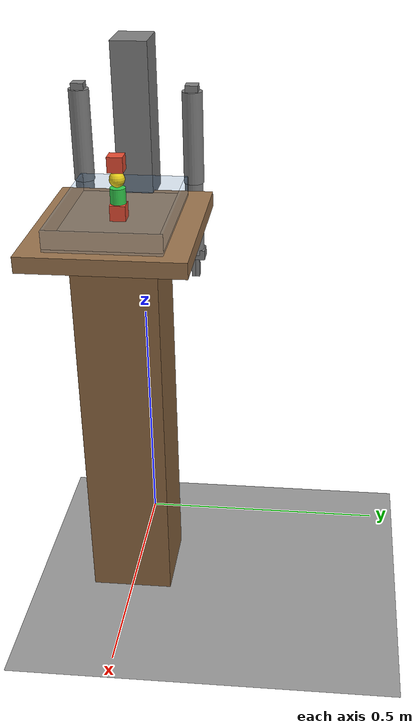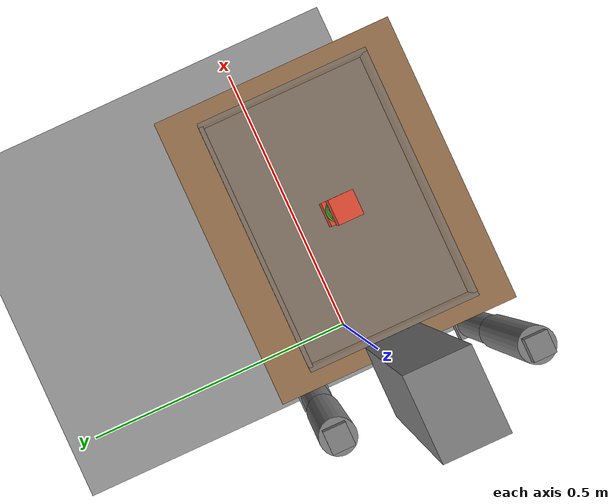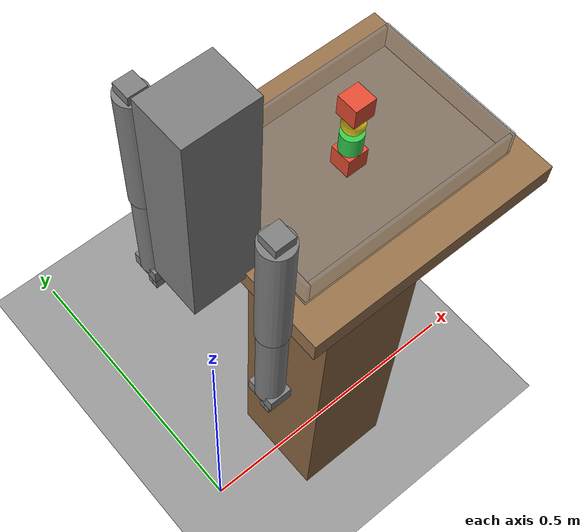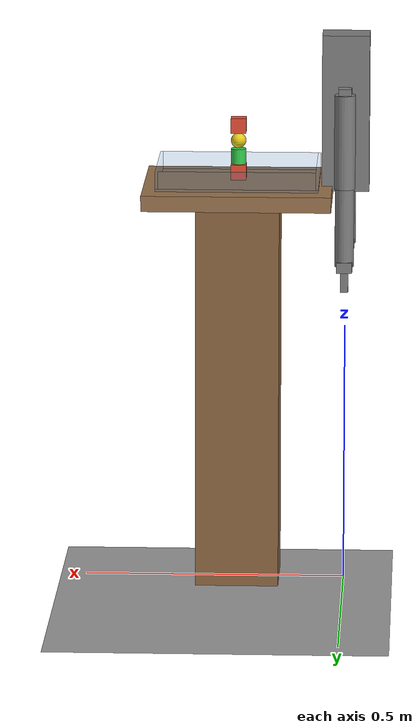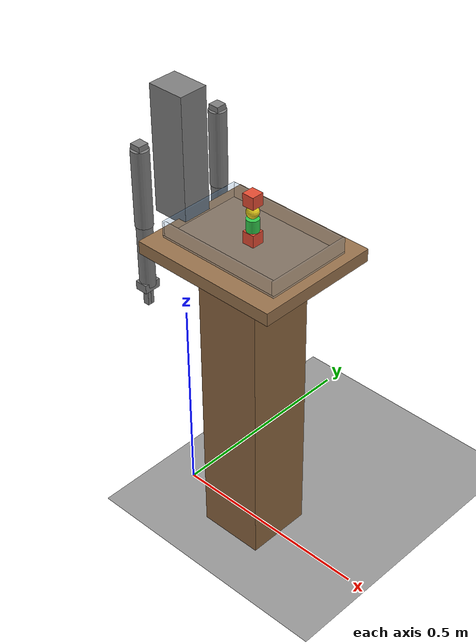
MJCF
<!--
  GENERATED by scripts/build_model.py — do NOT hand-edit.
  Source of truth: models/urdf/humanoid.urdf + models/mjcf/scene.xml + build_model.py.
-->
<mujoco model="bin_picking_scene">
  <compiler angle="radian"/>

  <option integrator="implicitfast"/>

  <visual>
    <global offwidth="1280" offheight="720"/>
  </visual>

  <default>
    <default/>
  </default>

  <worldbody>
    <geom name="ground" size="5 5 0.1" type="plane" rgba="0.6 0.6 0.6 1"/>
    <geom name="table_pedestal" size="0.08 0.08 0.375" pos="0.205 0 0.375" type="box" rgba="0.55 0.4 0.25 1"/>
    <geom name="table_top" size="0.18 0.15 0.015" pos="0.205 0 0.765" type="box" rgba="0.6 0.45 0.3 1"/>
    <geom name="bin_floor" size="0.155 0.105 0.0025" pos="0.205 0 0.7825" type="box" rgba="0.2 0.5 0.8 0.2"/>
    <geom name="bin_wall_front" size="0.0025 0.105 0.0165" pos="0.3575 0 0.8015" type="box" rgba="0.2 0.5 0.8 0.2"/>
    <geom name="bin_wall_back" size="0.0025 0.105 0.0165" pos="0.0525 0 0.8015" type="box" rgba="0.2 0.5 0.8 0.2"/>
    <geom name="bin_wall_left" size="0.15 0.0025 0.0165" pos="0.205 0.1025 0.8015" type="box" rgba="0.2 0.5 0.8 0.2"/>
    <geom name="bin_wall_right" size="0.15 0.0025 0.0165" pos="0.205 -0.1025 0.8015" type="box" rgba="0.2 0.5 0.8 0.2"/>
    <light name="key_light" pos="0 0 3" dir="0 0 -1" diffuse="1 1 1"/>
    <body name="mount" pos="0 0 0.92">
      <frame name="robot_mount">
        <body name="base_link">
          <body name="torso_link">
            <geom name="torso_collision" size="0.045 0.035 0.15" type="box" density="550"/>
            <camera name="head_camera" pos="0.45 -0.12 0.15" quat="0.645974 0.287606 0.287606 0.645974" resolution="640 480" fovy="73.7398"/>
            <body name="left_shoulder_yaw_link" pos="0 0.11 0.05">
              <joint name="left_shoulder_yaw_joint" pos="0 0 0" axis="0 0 1" range="-1.5708 1.5708" actuatorfrcrange="-3 3"/>
              <geom name="left_shoulder_yaw_actuator_collision" size="0.0125 0.0125 0.0125" type="box" density="9600"/>
              <body name="left_shoulder_link">
                <joint name="left_shoulder_pitch_joint" pos="0 0 0" axis="0 1 0" range="-2.0944 2.7053" actuatorfrcrange="-3 3"/>
                <geom name="left_shoulder_actuator_collision" size="0.0125 0.0125 0.0125" type="box" density="9600"/>
                <body name="left_upper_arm_link">
                  <joint name="left_shoulder_roll_joint" pos="0 0 0" axis="1 0 0" range="-0.8727 2.0944" actuatorfrcrange="-3 3"/>
                  <geom name="left_shoulder_roll_actuator_collision" size="0.0125 0.0125 0.0125" pos="0 0 -0.015" type="box" density="9600"/>
                  <geom name="left_upper_arm_collision" size="0.02 0.09" pos="0 0 -0.09" type="cylinder" density="1200"/>
                  <body name="left_forearm_link" pos="0 0 -0.18">
                    <joint name="left_elbow_joint" pos="0 0 0" axis="0 1 0" range="0 2.5831" actuatorfrcrange="-2 2"/>
                    <geom name="left_elbow_actuator_collision" size="0.0125 0.0125 0.0125" pos="0 0 -0.015" type="box" density="9600"/>
                    <geom name="left_forearm_collision" size="0.018 0.075" pos="0 0 -0.075" type="cylinder" density="1200"/>
                    <body name="left_ee_mount_link" pos="0 0 -0.15">
                      <body name="left_gripper_base_link">
                        <geom name="left_gripper_base_collision" size="0.015 0.02 0.01" type="box" density="5000"/>
                        <body name="left_gripper_finger1_link">
                          <joint name="left_gripper_finger1_joint" pos="0 0 0" axis="0 1 0" type="slide" range="0 0.03" actuatorfrcrange="-10 10"/>
                          <geom name="left_gripper_finger1_collision" size="0.0075 0.004 0.025" pos="0 0.004 -0.025" type="box" friction="1.2" density="1200"/>
                        </body>
                        <body name="left_gripper_finger2_link">
                          <joint name="left_gripper_finger2_joint" pos="0 0 0" axis="0 -1 0" type="slide" range="0 0.03" actuatorfrcrange="-10 10"/>
                          <geom name="left_gripper_finger2_collision" size="0.0075 0.004 0.025" pos="0 -0.004 -0.025" type="box" friction="1.2" density="1200"/>
                        </body>
                      </body>
                    </body>
                  </body>
                </body>
              </body>
            </body>
            <body name="right_shoulder_yaw_link" pos="0 -0.11 0.05">
              <joint name="right_shoulder_yaw_joint" pos="0 0 0" axis="0 0 1" range="-1.5708 1.5708" actuatorfrcrange="-3 3"/>
              <geom name="right_shoulder_yaw_actuator_collision" size="0.0125 0.0125 0.0125" type="box" density="9600"/>
              <body name="right_shoulder_link">
                <joint name="right_shoulder_pitch_joint" pos="0 0 0" axis="0 1 0" range="-2.0944 2.7053" actuatorfrcrange="-3 3"/>
                <geom name="right_shoulder_actuator_collision" size="0.0125 0.0125 0.0125" type="box" density="9600"/>
                <body name="right_upper_arm_link">
                  <joint name="right_shoulder_roll_joint" pos="0 0 0" axis="-1 0 0" range="-0.8727 2.0944" actuatorfrcrange="-3 3"/>
                  <geom name="right_shoulder_roll_actuator_collision" size="0.0125 0.0125 0.0125" pos="0 0 -0.015" type="box" density="9600"/>
                  <geom name="right_upper_arm_collision" size="0.02 0.09" pos="0 0 -0.09" type="cylinder" density="1200"/>
                  <body name="right_forearm_link" pos="0 0 -0.18">
                    <joint name="right_elbow_joint" pos="0 0 0" axis="0 1 0" range="0 2.5831" actuatorfrcrange="-2 2"/>
                    <geom name="right_elbow_actuator_collision" size="0.0125 0.0125 0.0125" pos="0 0 -0.015" type="box" density="9600"/>
                    <geom name="right_forearm_collision" size="0.018 0.075" pos="0 0 -0.075" type="cylinder" density="1200"/>
                    <body name="right_ee_mount_link" pos="0 0 -0.15">
                      <body name="right_gripper_base_link">
                        <geom name="right_gripper_base_collision" size="0.015 0.02 0.01" type="box" density="5000"/>
                        <body name="right_gripper_finger1_link">
                          <joint name="right_gripper_finger1_joint" pos="0 0 0" axis="0 1 0" type="slide" range="0 0.03" actuatorfrcrange="-10 10"/>
                          <geom name="right_gripper_finger1_collision" size="0.0075 0.004 0.025" pos="0 0.004 -0.025" type="box" friction="1.2" density="1200"/>
                        </body>
                        <body name="right_gripper_finger2_link">
                          <joint name="right_gripper_finger2_joint" pos="0 0 0" axis="0 -1 0" type="slide" range="0 0.03" actuatorfrcrange="-10 10"/>
                          <geom name="right_gripper_finger2_collision" size="0.0075 0.004 0.025" pos="0 -0.004 -0.025" type="box" friction="1.2" density="1200"/>
                        </body>
                      </body>
                    </body>
                  </body>
                </body>
              </body>
            </body>
          </body>
        </body>
      </frame>
    </body>
    <body name="object_0" pos="0.205 0 0.8005">
      <joint name="object_0_freejoint" type="free"/>
      <geom name="object_0_collision" size="0.0145 0.0145 0.0145" type="box" friction="0.8 0.005 0.005" mass="0.03" rgba="0.9 0.3 0.2 1"/>
    </body>
    <body name="object_1" pos="0.205 0 0.8305">
      <joint name="object_1_freejoint" type="free"/>
      <geom name="object_1_collision" size="0.0145 0.0145" type="cylinder" friction="0.8 0.005 0.005" mass="0.03" rgba="0.2 0.8 0.3 1"/>
    </body>
    <body name="object_2" pos="0.205 0 0.8605">
      <joint name="object_2_freejoint" type="free"/>
      <geom name="object_2_collision" size="0.0145" friction="0.8 0.005 0.005" mass="0.03" rgba="0.9 0.8 0.1 1"/>
    </body>
    <body name="object_3" pos="0.205 0 0.8905">
      <joint name="object_3_freejoint" type="free"/>
      <geom name="object_3_collision" size="0.0145 0.0145 0.0145" type="box" friction="0.8 0.005 0.005" mass="0.03" rgba="0.9 0.3 0.2 1"/>
    </body>
  </worldbody>

  <contact>
    <exclude body1="left_shoulder_yaw_link" body2="left_upper_arm_link"/>
    <exclude body1="right_shoulder_yaw_link" body2="right_upper_arm_link"/>
  </contact>

  <equality>
    <joint joint1="left_gripper_finger2_joint" joint2="left_gripper_finger1_joint" polycoef="0 1 0 0 0"/>
    <joint joint1="right_gripper_finger2_joint" joint2="right_gripper_finger1_joint" polycoef="0 1 0 0 0"/>
  </equality>

  <actuator>
    <general name="left_shoulder_yaw_joint_position" joint="left_shoulder_yaw_joint" ctrllimited="true" ctrlrange="-1.5708 1.5708" forcelimited="true" forcerange="-3 3" biastype="affine" gainprm="60" biasprm="0 -60 -6"/>
    <general name="left_shoulder_pitch_joint_position" joint="left_shoulder_pitch_joint" ctrllimited="true" ctrlrange="-2.0944 2.7053" forcelimited="true" forcerange="-3 3" biastype="affine" gainprm="60" biasprm="0 -60 -6"/>
    <general name="left_shoulder_roll_joint_position" joint="left_shoulder_roll_joint" ctrllimited="true" ctrlrange="-0.8727 2.0944" forcelimited="true" forcerange="-3 3" biastype="affine" gainprm="60" biasprm="0 -60 -6"/>
    <general name="left_elbow_joint_position" joint="left_elbow_joint" ctrllimited="true" ctrlrange="0 2.5831" forcelimited="true" forcerange="-2 2" biastype="affine" gainprm="60" biasprm="0 -60 -6"/>
    <general name="right_shoulder_yaw_joint_position" joint="right_shoulder_yaw_joint" ctrllimited="true" ctrlrange="-1.5708 1.5708" forcelimited="true" forcerange="-3 3" biastype="affine" gainprm="60" biasprm="0 -60 -6"/>
    <general name="right_shoulder_pitch_joint_position" joint="right_shoulder_pitch_joint" ctrllimited="true" ctrlrange="-2.0944 2.7053" forcelimited="true" forcerange="-3 3" biastype="affine" gainprm="60" biasprm="0 -60 -6"/>
    <general name="right_shoulder_roll_joint_position" joint="right_shoulder_roll_joint" ctrllimited="true" ctrlrange="-0.8727 2.0944" forcelimited="true" forcerange="-3 3" biastype="affine" gainprm="60" biasprm="0 -60 -6"/>
    <general name="right_elbow_joint_position" joint="right_elbow_joint" ctrllimited="true" ctrlrange="0 2.5831" forcelimited="true" forcerange="-2 2" biastype="affine" gainprm="60" biasprm="0 -60 -6"/>
    <general name="left_gripper_finger1_joint_position" joint="left_gripper_finger1_joint" ctrllimited="true" ctrlrange="0 0.03" forcelimited="true" forcerange="-10 10" biastype="affine" gainprm="200" biasprm="0 -200 -10"/>
    <general name="right_gripper_finger1_joint_position" joint="right_gripper_finger1_joint" ctrllimited="true" ctrlrange="0 0.03" forcelimited="true" forcerange="-10 10" biastype="affine" gainprm="200" biasprm="0 -200 -10"/>
  </actuator>
</mujoco>
